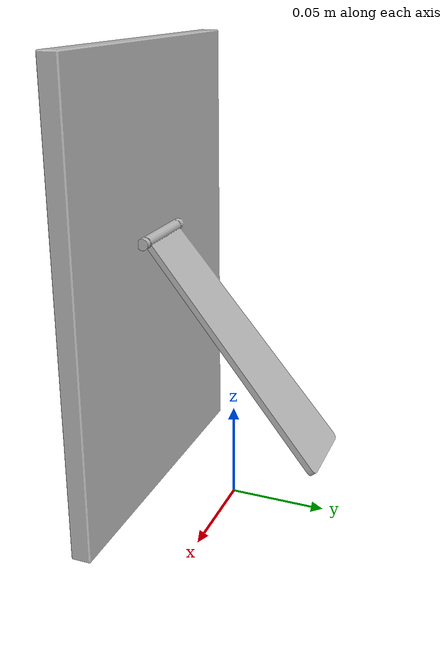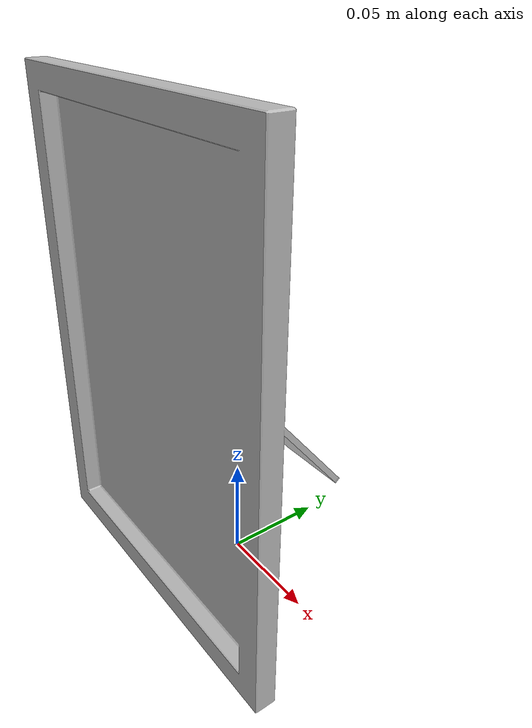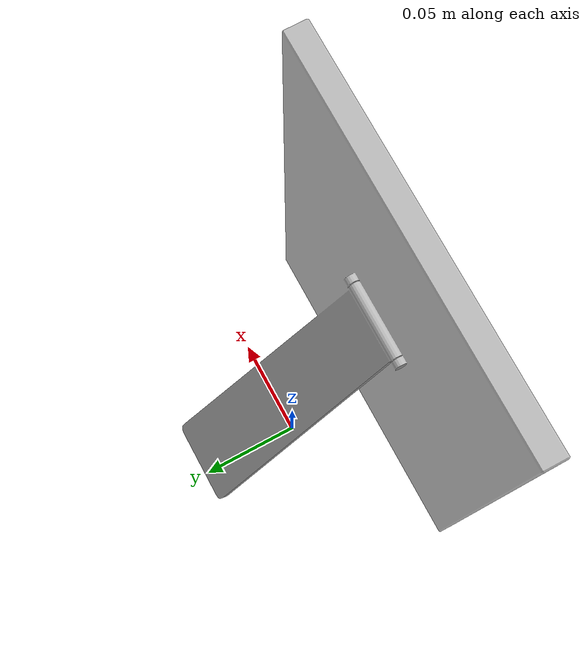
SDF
<?xml version="1.0" encoding="utf-8"?>
<sdf version="1.6">
  <model name="aws_robomaker_residential_DeskPortraitB_01">
    <link name="link">
      <inertial>
        <mass>1</mass>
        <inertia>
          <ixx>0.0135</ixx>
          <ixy>0</ixy>
          <ixz>0</ixz>
          <iyy>0.02</iyy>
          <iyz>0</iyz>
          <izz>0.01347</izz>
        </inertia>
      </inertial>
      <collision name="collision">
        <geometry>
          <mesh>
            <uri>model://aws_robomaker_residential_DeskPortraitB_01/meshes/aws_DeskPortraitB_01_collision.DAE</uri>
            <scale>1 1 1</scale>
          </mesh>
        </geometry>
      </collision>
      <visual name="visual">
        <geometry>
          <mesh>
            <uri>model://aws_robomaker_residential_DeskPortraitB_01/meshes/aws_DeskPortraitB_01_visual.DAE</uri>
          </mesh>
        </geometry>
        <meta>
          <layer> 1 </layer>
        </meta>
      </visual>
    </link>
  </model>
</sdf>
